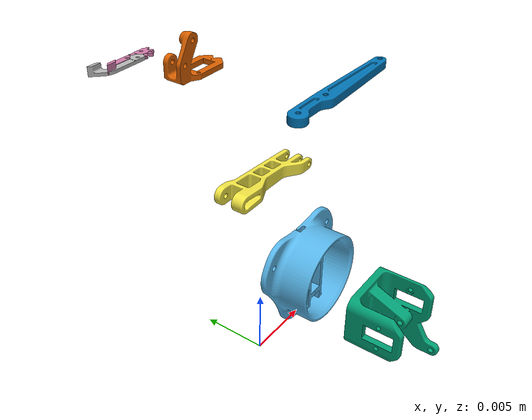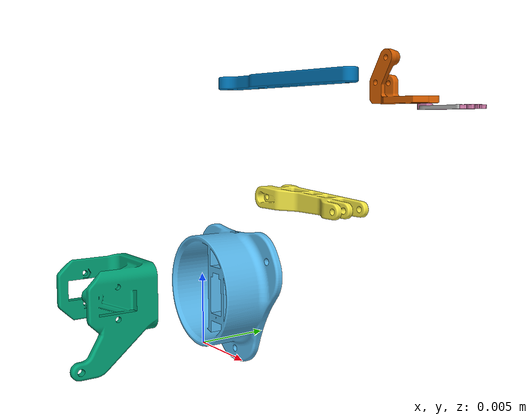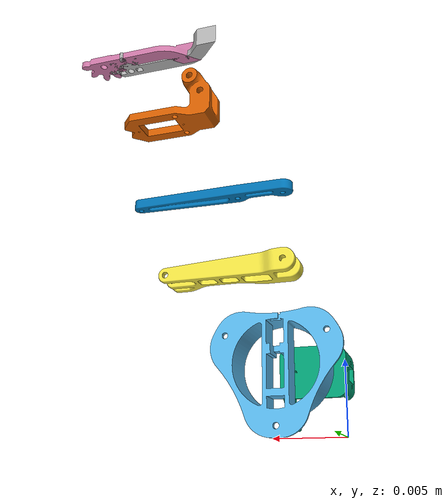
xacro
<?xml version="1.0"?>
<robot xmlns:xacro="http://www.ros.org/wiki/xacro" name="hand_robo_arm">

  <link name="world"/>

  <link name="base_link">
    <visual>
      <origin rpy="0 0 0" xyz="0 0 0"/>
      <geometry>
        <mesh filename="package://hand_robo/meshes/Assembly 1 - basement.stl" scale="1.0 1.0 1.0"/>
      </geometry>
    </visual>
  </link>

  <joint name="virtual_joint" type="fixed">
    <parent link="world"/>
    <child link="base_link"/>
    <origin rpy="0 0 0" xyz="0 0 0"/>
  </joint>

  <link name="base_plate">
    <visual>
      <origin rpy="0 0 0" xyz="0 0 0"/>
      <geometry>
        <mesh filename="package://hand_robo/meshes/Assembly 1 - base_plate_1.stl" scale="1.0 1.0 1.0"/>
      </geometry>
    </visual>
  </link>

  <joint name="joint_1" type="revolute">
    <parent link="base_link"/>
    <child link="base_plate"/>
    <origin rpy="0 0 0" xyz="-0.00003 -0.00048 0.00129"/> <axis xyz="0 0 1"/>
    <limit lower="-3.14" upper="3.14" effort="10.0" velocity="1.0"/>
  </joint>

  <link name="forward_drive_arm">
    <visual>
      <origin rpy="0 0 0" xyz="0 0 0"/>
      <geometry>
        <mesh filename="package://hand_robo/meshes/Assembly 1 - forward_drive_arm.stl" scale="1.0 1.0 1.0"/>
      </geometry>
    </visual>
  </link>

  <joint name="joint_2" type="revolute">
    <parent link="base_plate"/>
    <child link="forward_drive_arm"/>
    <origin rpy="0 0 0" xyz="0.00197 0.00335 0.00840"/> <axis xyz="0 1 0"/>
    <limit lower="-1.57" upper="1.57" effort="10.0" velocity="1.0"/>
  </joint>

  <link name="horizontal_arm">
    <visual>
      <origin rpy="0 0 0" xyz="0 0 0"/>
      <geometry>
        <mesh filename="package://hand_robo/meshes/Assembly 1 - horizontal_arm.stl" scale="1.0 1.0 1.0"/>
      </geometry>
    </visual>
  </link>

  <joint name="joint_3" type="revolute">
    <parent link="forward_drive_arm"/>
    <child link="horizontal_arm"/>
    <origin rpy="0 0 0" xyz="0.00135 -0.00375 0.00800"/> <axis xyz="0 1 0"/>
    <limit lower="-1.57" upper="1.57" effort="10.0" velocity="1.0"/>
  </joint>

  <link name="claw_support">
    <visual>
      <origin rpy="0 0 0" xyz="0 0 0"/>
      <geometry>
        <mesh filename="package://hand_robo/meshes/Assembly 1 - claw_support.stl" scale="1.0 1.0 1.0"/>
      </geometry>
    </visual>
  </link>

  <joint name="joint_4" type="revolute">
    <parent link="horizontal_arm"/>
    <child link="claw_support"/>
    <origin rpy="0 0 0" xyz="0.00167 0.01166 -0.00075"/> <axis xyz="0 0 1"/>
    <limit lower="-2.0" upper="2.0" effort="10.0" velocity="1.0"/>
  </joint>

  <link name="gripper_right">
    <visual>
      <origin rpy="0 0 0" xyz="0 0 0"/>
      <geometry>
        <mesh filename="package://hand_robo/meshes/Assembly 1 - right_finger.stl" scale="1.0 1.0 1.0"/>
      </geometry>
    </visual>
  </link>

  <joint name="joint_gripper_right" type="prismatic">
    <parent link="claw_support"/>
    <child link="gripper_right"/>
    <origin rpy="0 0 0" xyz="-0.00141 0.00680 -0.00032"/> <axis xyz="1 0 0"/>
    <limit lower="-0.05" upper="0.05" effort="5.0" velocity="0.5"/>
  </joint>

  <link name="gripper_left">
    <visual>
      <origin rpy="0 0 0" xyz="0 0 0"/>
      <geometry>
        <mesh filename="package://hand_robo/meshes/Assembly 1 - left_finger.stl" scale="1.0 1.0 1.0"/>
      </geometry>
    </visual>
  </link>

  <joint name="joint_gripper_left" type="prismatic">
    <parent link="claw_support"/>
    <child link="gripper_left"/>
    <origin rpy="0 0 0" xyz="-0.00253 0.00680 -0.00032"/> <axis xyz="-1 0 0"/>
    <mimic joint="joint_gripper_right" multiplier="-1"/>
    <limit lower="-0.05" upper="0.05" effort="5.0" velocity="0.5"/>
  </joint>

</robot>
